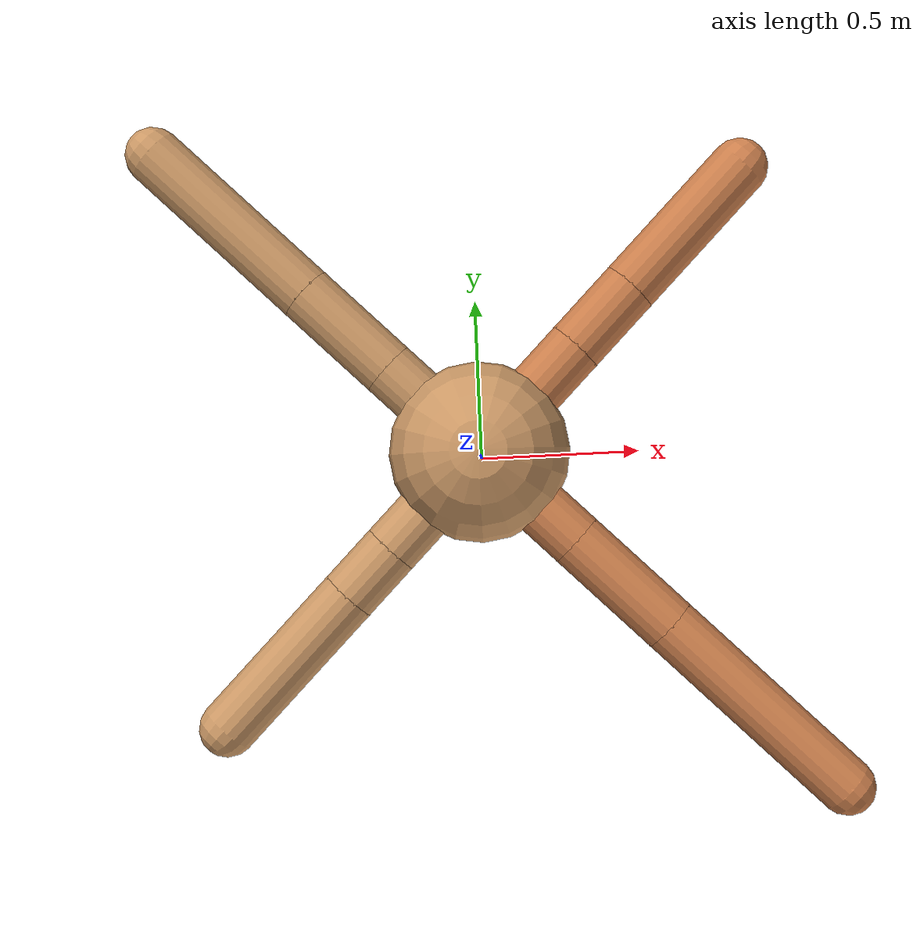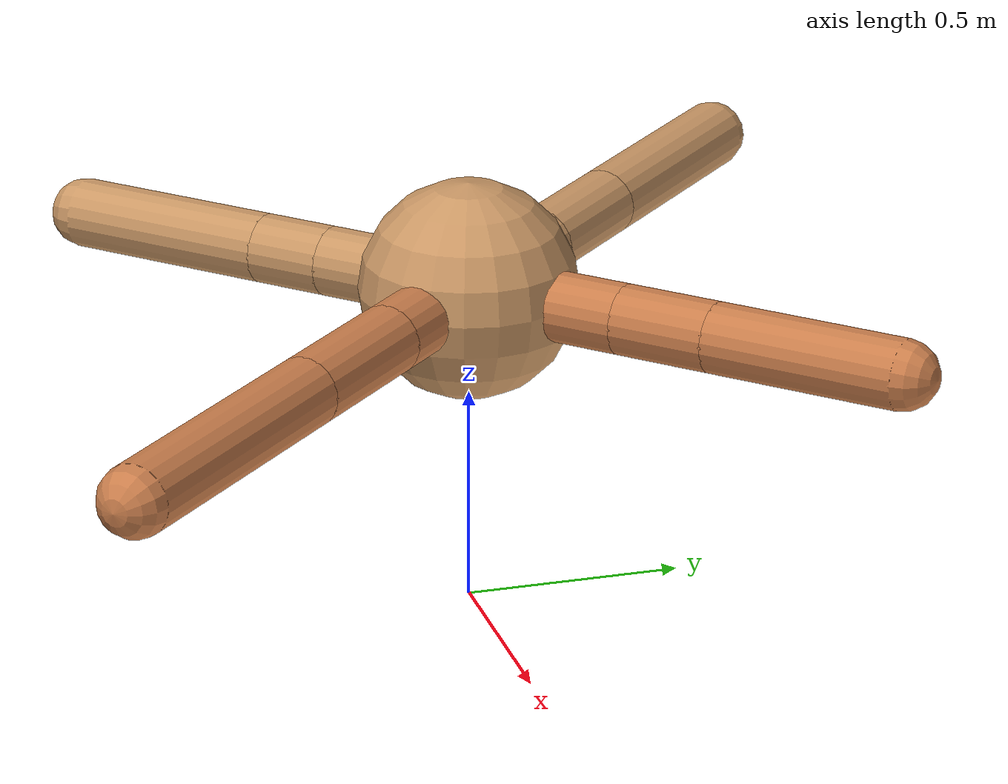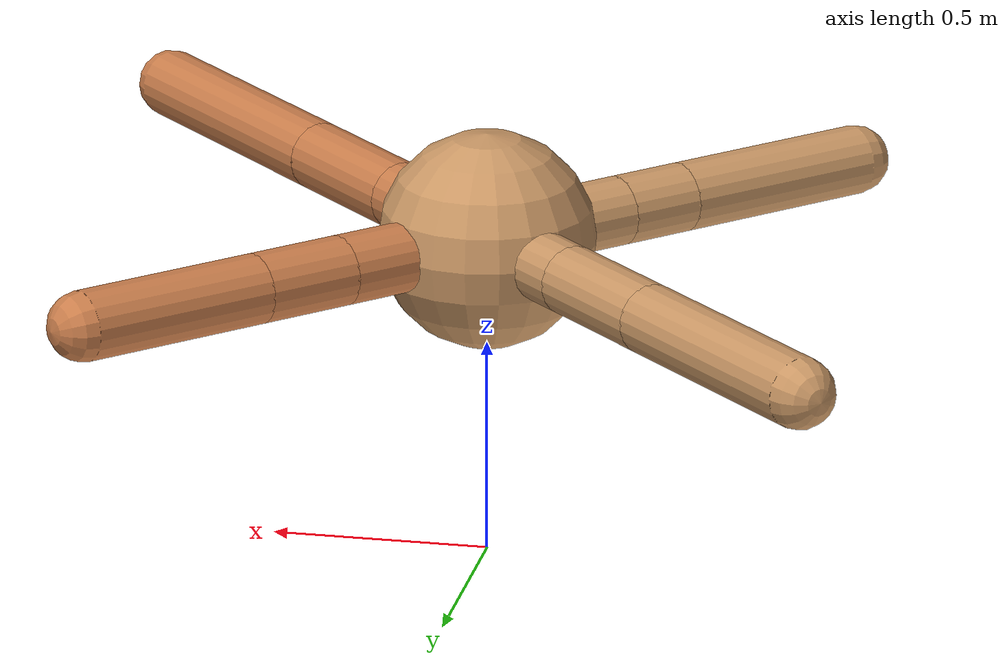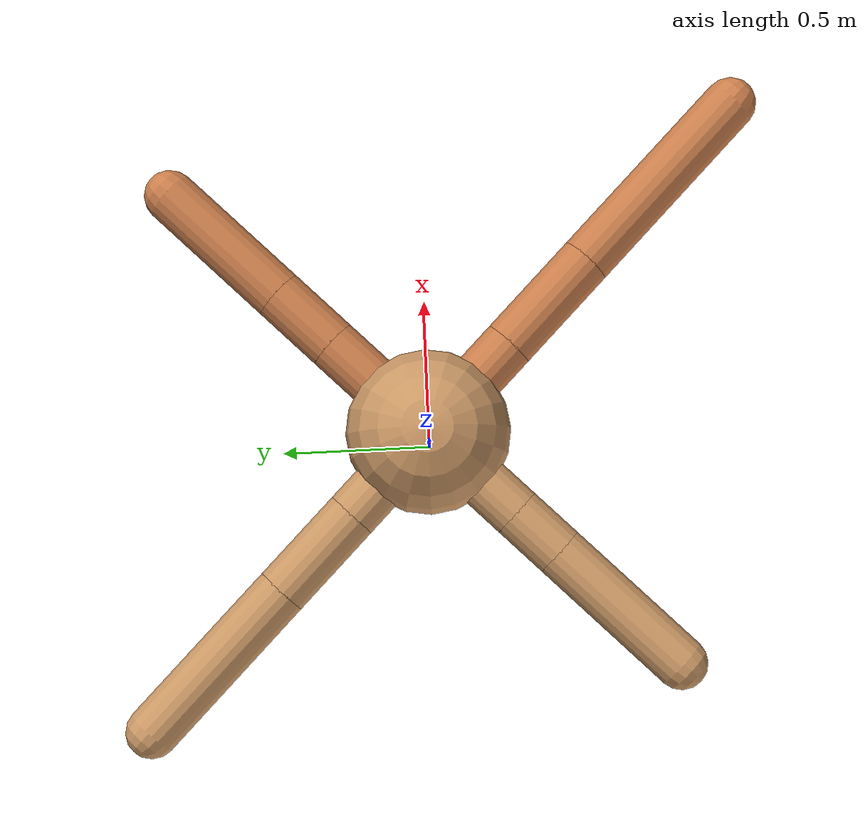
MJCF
<mujoco model="ant">
  <compiler angle="degree" coordinate="local" inertiafromgeom="true" />
  <option integrator="RK4" timestep="0.01" />
  <custom>
    <numeric data="0.0 0.0 0.55 1.0 0.0 0.0 0.0 0.0 1.0 0.0 -1.0 0.0 -1.0 0.0 1.0" name="init_qpos" />
  </custom>
  <default>
    <joint armature="1" damping="1" limited="true" />
    <geom conaffinity="0" condim="3" density="5.0" friction="1.5 0.1 0.1" margin="0.01" rgba="0.8 0.6 0.4 1" />
  </default>
  <worldbody>
    <body name="torso" pos="0 0 0.75">
      <geom name="torso_geom" pos="0 0 0" size="0.25" type="sphere" />

      <body name="front_left_leg" pos="0 0 0">
        <geom fromto="0.0 0.0 0.0 0.2767583806718091 0.2767583806718091 0.0" name="aux_1_geom" size="0.08" type="capsule" rgba=".8 .5 .3 1" />
        <body name="aux_1" pos="0.2767583806718091 0.2767583806718091 0.0">
          <joint axis="0 0 1" name="hip_1" pos="0.0 0.0 0.0" range="-40 40" type="hinge" />
          <geom fromto="0.0 0.0 0.0 0.15797868231317044 0.15797868231317044 0.0" name="left_leg_geom" size="0.08" type="capsule" rgba=".8 .5 .3 1" />
          <body pos="0.15797868231317044 0.15797868231317044 0.0" name="front_left_foot">
            <joint axis="-1 1 0" name="ankle_1" pos="0.0 0.0 0.0" range="30 100" type="hinge" />
            <geom fromto="0.0 0.0 0.0 0.31882764458686985 0.31882764458686985 0.0" name="left_ankle_geom" size="0.08" type="capsule" rgba=".8 .5 .3 1" />
          </body>
        </body>
      </body>
      <body name="front_right_leg" pos="0 0 0">
        <geom fromto="0.0 0.0 0.0 -0.24017503132320367 0.24017503132320367 0.0" name="aux_2_geom" size="0.08" type="capsule" />
        <body name="aux_2" pos="-0.24017503132320367 0.24017503132320367 0.0">
          <joint axis="0 0 1" name="hip_2" pos="0.0 0.0 0.0" range="-40 40" type="hinge" />
          <geom fromto="0.0 0.0 0.0 -0.21796791289054715 0.21796791289054715 0.0" name="right_leg_geom" size="0.08" type="capsule" />
          <body pos="-0.21796791289054715 0.21796791289054715 0.0" name="front_right_foot">
            <joint axis="1 1 0" name="ankle_2" pos="0.0 0.0 0.0" range="-100 -30" type="hinge" />
            <geom fromto="0.0 0.0 0.0 -0.4014122935228532 0.4014122935228532 0.0" name="right_ankle_geom" size="0.08" type="capsule" />
          </body>
        </body>
      </body>
      <body name="left_back_leg" pos="0 0 0">
        <geom fromto="0.0 0.0 0.0 -0.2553745334146549 -0.2553745334146549 0.0" name="aux_3_geom" size="0.08" type="capsule" />
        <body name="aux_3" pos="-0.2553745334146549 -0.2553745334146549 0.0">
          <joint axis="0 0 1" name="hip_3" pos="0.0 0.0 0.0" range="-40 40" type="hinge" />
          <geom fromto="0.0 0.0 0.0 -0.12220327252314041 -0.12220327252314041 0.0" name="back_leg_geom" size="0.08" type="capsule" />
          <body pos="-0.12220327252314041 -0.12220327252314041 0.0" name="left_back_foot">
            <joint axis="-1 1 0" name="ankle_3" pos="0.0 0.0 0.0" range="-100 -30" type="hinge" />
            <geom fromto="0.0 0.0 0.0 -0.3479421652955812 -0.3479421652955812 0.0" name="third_ankle_geom" size="0.08" type="capsule" />
          </body>
        </body>
      </body>
      <body name="right_back_leg" pos="0 0 0">
        <geom fromto="0.0 0.0 0.0 0.2547605955525534 -0.2547605955525534 0.0" name="aux_4_geom" size="0.08" type="capsule" rgba=".8 .5 .3 1" />
        <body name="aux_4" pos="0.2547605955525534 -0.2547605955525534 0.0">
          <joint axis="0 0 1" name="hip_4" pos="0.0 0.0 0.0" range="-40 40" type="hinge" />
          <geom fromto="0.0 0.0 0.0 0.24472975303314445 -0.24472975303314445 0.0" name="rightback_leg_geom" size="0.08" type="capsule" rgba=".8 .5 .3 1" />
          <body pos="0.24472975303314445 -0.24472975303314445 0.0" name="right_back_foot">
            <joint axis="1 1 0" name="ankle_4" pos="0.0 0.0 0.0" range="30 100" type="hinge" />
            <geom fromto="0.0 0.0 0.0 0.46610922327939985 -0.46610922327939985 0.0" name="fourth_ankle_geom" size="0.08" type="capsule" rgba=".8 .5 .3 1" />
          </body>
        </body>
      </body>
    </body>
  </worldbody>
  <actuator>
    <motor ctrllimited="true" ctrlrange="-1.0 1.0" joint="hip_4" gear="150" />
    <motor ctrllimited="true" ctrlrange="-1.0 1.0" joint="ankle_4" gear="150" />
    <motor ctrllimited="true" ctrlrange="-1.0 1.0" joint="hip_1" gear="150" />
    <motor ctrllimited="true" ctrlrange="-1.0 1.0" joint="ankle_1" gear="150" />
    <motor ctrllimited="true" ctrlrange="-1.0 1.0" joint="hip_2" gear="150" />
    <motor ctrllimited="true" ctrlrange="-1.0 1.0" joint="ankle_2" gear="150" />
    <motor ctrllimited="true" ctrlrange="-1.0 1.0" joint="hip_3" gear="150" />
    <motor ctrllimited="true" ctrlrange="-1.0 1.0" joint="ankle_3" gear="150" />
  </actuator>
</mujoco>
